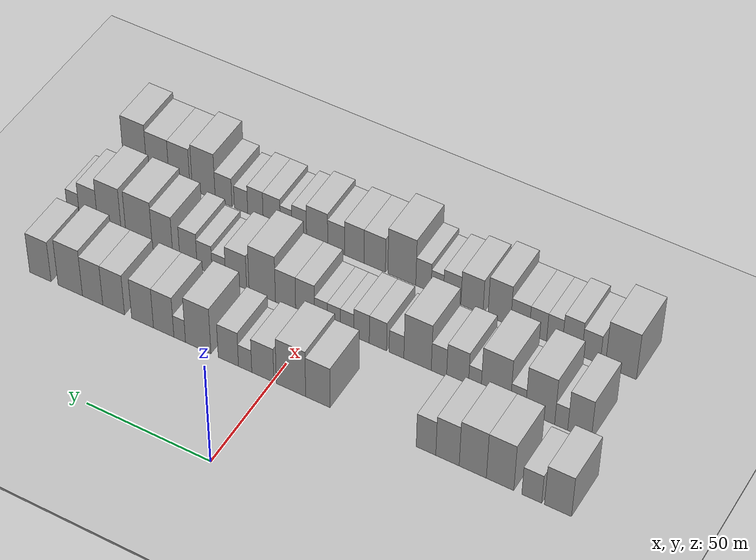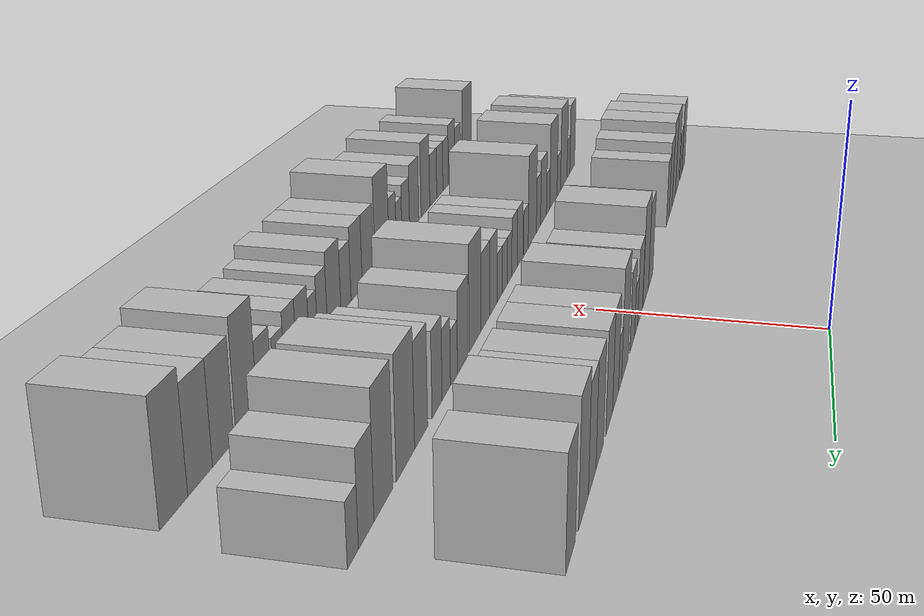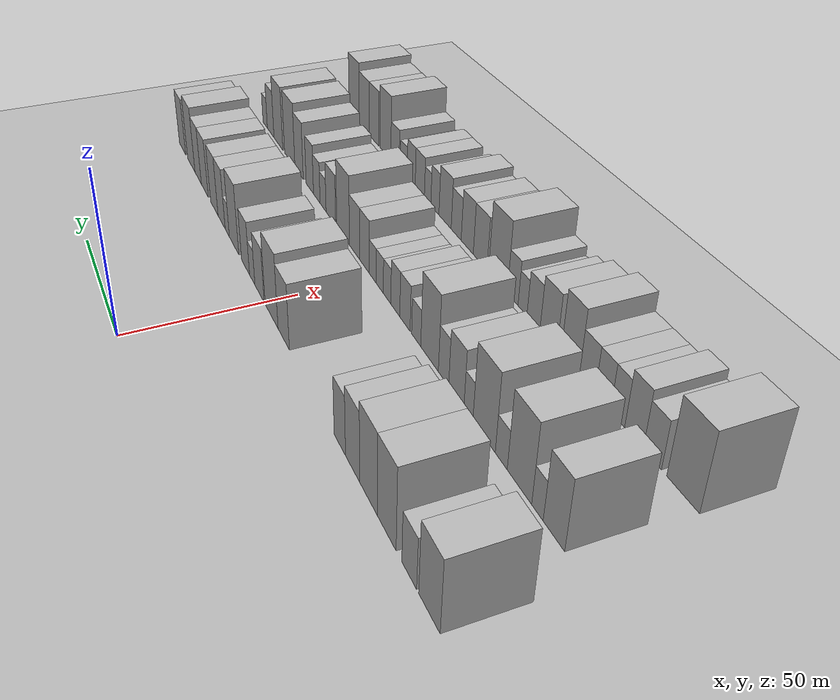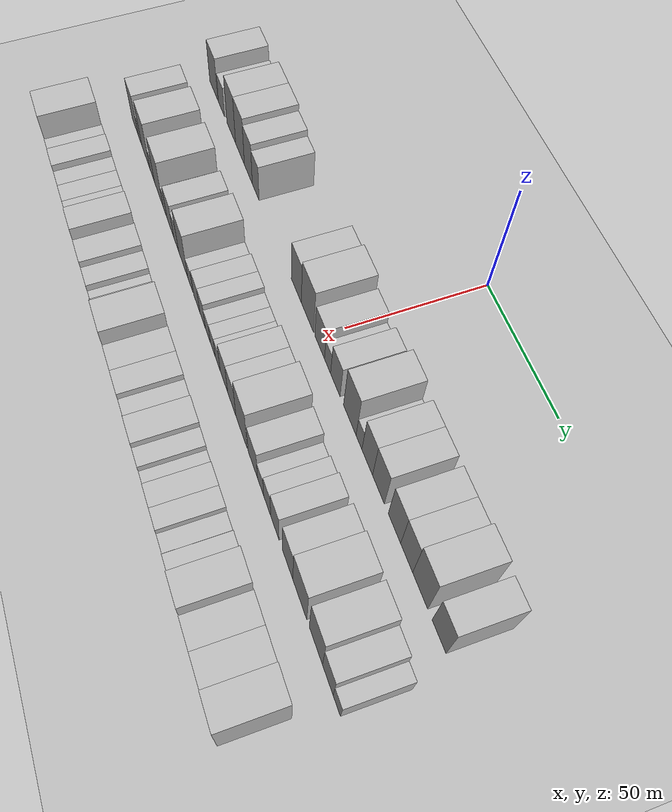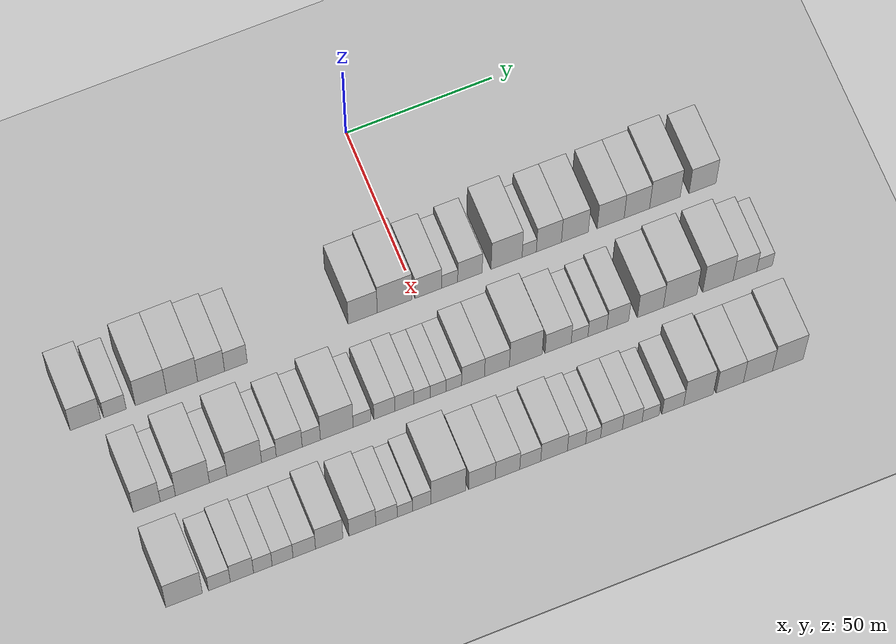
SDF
<sdf version="1.6">
 <world name="default">
  <include><name>ground_plane_1</name><uri>model://HANNAS_ground_plane</uri></include>
  <include>
   <name>ground_plane_2</name>
   <uri>model://HANNAS_ground_plane</uri>
   <pose>100 0 0  0 0 0</pose>
  </include>
  <model name="building_23">
   <static>1</static>
   <pose>50.0000 -110.7468 0 0.000000 0.000000 0.000000</pose>
   <link name="link">
    <pose>0 0 10.50 0 0 0</pose>
    <collision name="collision"><geometry><box><size>20.0000 10.0822 21.0000</size></box></geometry></collision>
    <visual name="visual">
     <cast_shadows>0</cast_shadows>
     <geometry><box><size>20.0000 10.0822 21.0000</size></box></geometry>
     <material>
      <script>
       <uri>model://HANNAS_wall/materials/scripts</uri>
       <uri>model://HANNAS_wall/materials/textures</uri>
       <name>vrc/HANNAS_wall</name>
      </script>
     </material>
    </visual>
   </link>
  </model>
  <model name="building_24">
   <static>1</static>
   <pose>50.0000 -100.9784 0 0.000000 0.000000 0.000000</pose>
   <link name="link">
    <pose>0 0 7.50 0 0 0</pose>
    <collision name="collision"><geometry><box><size>20.0000 7.4545 15.0000</size></box></geometry></collision>
    <visual name="visual">
     <cast_shadows>0</cast_shadows>
     <geometry><box><size>20.0000 7.4545 15.0000</size></box></geometry>
     <material>
      <script>
       <uri>model://HANNAS_wall/materials/scripts</uri>
       <uri>model://HANNAS_wall/materials/textures</uri>
       <name>vrc/HANNAS_wall</name>
      </script>
     </material>
    </visual>
   </link>
  </model>
  <model name="building_25">
   <static>1</static>
   <pose>50.0000 -89.0667 0 0.000000 0.000000 0.000000</pose>
   <link name="link">
    <pose>0 0 12.00 0 0 0</pose>
    <collision name="collision"><geometry><box><size>20.0000 10.3689 24.0000</size></box></geometry></collision>
    <visual name="visual">
     <cast_shadows>0</cast_shadows>
     <geometry><box><size>20.0000 10.3689 24.0000</size></box></geometry>
     <material>
      <script>
       <uri>model://HANNAS_wall/materials/scripts</uri>
       <uri>model://HANNAS_wall/materials/textures</uri>
       <name>vrc/HANNAS_wall</name>
      </script>
     </material>
    </visual>
   </link>
  </model>
  <model name="building_26">
   <static>1</static>
   <pose>50.0000 -78.7069 0 0.000000 0.000000 0.000000</pose>
   <link name="link">
    <pose>0 0 12.00 0 0 0</pose>
    <collision name="collision"><geometry><box><size>20.0000 10.3507 24.0000</size></box></geometry></collision>
    <visual name="visual">
     <cast_shadows>0</cast_shadows>
     <geometry><box><size>20.0000 10.3507 24.0000</size></box></geometry>
     <material>
      <script>
       <uri>model://HANNAS_wall/materials/scripts</uri>
       <uri>model://HANNAS_wall/materials/textures</uri>
       <name>vrc/HANNAS_wall</name>
      </script>
     </material>
    </visual>
   </link>
  </model>
  <model name="building_27">
   <static>1</static>
   <pose>50.0000 -69.0423 0 0.000000 0.000000 0.000000</pose>
   <link name="link">
    <pose>0 0 10.50 0 0 0</pose>
    <collision name="collision"><geometry><box><size>20.0000 8.9786 21.0000</size></box></geometry></collision>
    <visual name="visual">
     <cast_shadows>0</cast_shadows>
     <geometry><box><size>20.0000 8.9786 21.0000</size></box></geometry>
     <material>
      <script>
       <uri>model://HANNAS_wall/materials/scripts</uri>
       <uri>model://HANNAS_wall/materials/textures</uri>
       <name>vrc/HANNAS_wall</name>
      </script>
     </material>
    </visual>
   </link>
  </model>
  <model name="building_28">
   <static>1</static>
   <pose>50.0000 -60.7804 0 0.000000 0.000000 0.000000</pose>
   <link name="link">
    <pose>0 0 9.00 0 0 0</pose>
    <collision name="collision"><geometry><box><size>20.0000 7.5452 18.0000</size></box></geometry></collision>
    <visual name="visual">
     <cast_shadows>0</cast_shadows>
     <geometry><box><size>20.0000 7.5452 18.0000</size></box></geometry>
     <material>
      <script>
       <uri>model://HANNAS_wall/materials/scripts</uri>
       <uri>model://HANNAS_wall/materials/textures</uri>
       <name>vrc/HANNAS_wall</name>
      </script>
     </material>
    </visual>
   </link>
  </model>
  <model name="building_29">
   <static>1</static>
   <pose>50.0000 -18.3512 0 0.000000 0.000000 0.000000</pose>
   <link name="link">
    <pose>0 0 10.50 0 0 0</pose>
    <collision name="collision"><geometry><box><size>20.0000 9.7710 21.0000</size></box></geometry></collision>
    <visual name="visual">
     <cast_shadows>0</cast_shadows>
     <geometry><box><size>20.0000 9.7710 21.0000</size></box></geometry>
     <material>
      <script>
       <uri>model://HANNAS_wall/materials/scripts</uri>
       <uri>model://HANNAS_wall/materials/textures</uri>
       <name>vrc/HANNAS_wall</name>
      </script>
     </material>
    </visual>
   </link>
  </model>
  <model name="building_30">
   <static>1</static>
   <pose>50.0000 -7.5847 0 0.000000 0.000000 0.000000</pose>
   <link name="link">
    <pose>0 0 12.00 0 0 0</pose>
    <collision name="collision"><geometry><box><size>20.0000 11.7621 24.0000</size></box></geometry></collision>
    <visual name="visual">
     <cast_shadows>0</cast_shadows>
     <geometry><box><size>20.0000 11.7621 24.0000</size></box></geometry>
     <material>
      <script>
       <uri>model://HANNAS_wall/materials/scripts</uri>
       <uri>model://HANNAS_wall/materials/textures</uri>
       <name>vrc/HANNAS_wall</name>
      </script>
     </material>
    </visual>
   </link>
  </model>
  <model name="building_31">
   <static>1</static>
   <pose>50.0000 3.7757 0 0.000000 0.000000 0.000000</pose>
   <link name="link">
    <pose>0 0 9.00 0 0 0</pose>
    <collision name="collision"><geometry><box><size>20.0000 8.9586 18.0000</size></box></geometry></collision>
    <visual name="visual">
     <cast_shadows>0</cast_shadows>
     <geometry><box><size>20.0000 8.9586 18.0000</size></box></geometry>
     <material>
      <script>
       <uri>model://HANNAS_wall/materials/scripts</uri>
       <uri>model://HANNAS_wall/materials/textures</uri>
       <name>vrc/HANNAS_wall</name>
      </script>
     </material>
    </visual>
   </link>
  </model>
  <model name="building_32">
   <static>1</static>
   <pose>50.0000 10.9654 0 0.000000 0.000000 0.000000</pose>
   <link name="link">
    <pose>0 0 6.00 0 0 0</pose>
    <collision name="collision"><geometry><box><size>20.0000 5.4208 12.0000</size></box></geometry></collision>
    <visual name="visual">
     <cast_shadows>0</cast_shadows>
     <geometry><box><size>20.0000 5.4208 12.0000</size></box></geometry>
     <material>
      <script>
       <uri>model://HANNAS_wall/materials/scripts</uri>
       <uri>model://HANNAS_wall/materials/textures</uri>
       <name>vrc/HANNAS_wall</name>
      </script>
     </material>
    </visual>
   </link>
  </model>
  <model name="building_33">
   <static>1</static>
   <pose>50.0000 17.8217 0 0.000000 0.000000 0.000000</pose>
   <link name="link">
    <pose>0 0 9.00 0 0 0</pose>
    <collision name="collision"><geometry><box><size>20.0000 8.2917 18.0000</size></box></geometry></collision>
    <visual name="visual">
     <cast_shadows>0</cast_shadows>
     <geometry><box><size>20.0000 8.2917 18.0000</size></box></geometry>
     <material>
      <script>
       <uri>model://HANNAS_wall/materials/scripts</uri>
       <uri>model://HANNAS_wall/materials/textures</uri>
       <name>vrc/HANNAS_wall</name>
      </script>
     </material>
    </visual>
   </link>
  </model>
  <model name="building_34">
   <static>1</static>
   <pose>50.0000 30.2291 0 0.000000 0.000000 0.000000</pose>
   <link name="link">
    <pose>0 0 12.00 0 0 0</pose>
    <collision name="collision"><geometry><box><size>20.0000 10.5231 24.0000</size></box></geometry></collision>
    <visual name="visual">
     <cast_shadows>0</cast_shadows>
     <geometry><box><size>20.0000 10.5231 24.0000</size></box></geometry>
     <material>
      <script>
       <uri>model://HANNAS_wall/materials/scripts</uri>
       <uri>model://HANNAS_wall/materials/textures</uri>
       <name>vrc/HANNAS_wall</name>
      </script>
     </material>
    </visual>
   </link>
  </model>
  <model name="building_35">
   <static>1</static>
   <pose>50.0000 37.9034 0 0.000000 0.000000 0.000000</pose>
   <link name="link">
    <pose>0 0 6.00 0 0 0</pose>
    <collision name="collision"><geometry><box><size>20.0000 4.8255 12.0000</size></box></geometry></collision>
    <visual name="visual">
     <cast_shadows>0</cast_shadows>
     <geometry><box><size>20.0000 4.8255 12.0000</size></box></geometry>
     <material>
      <script>
       <uri>model://HANNAS_wall/materials/scripts</uri>
       <uri>model://HANNAS_wall/materials/textures</uri>
       <name>vrc/HANNAS_wall</name>
      </script>
     </material>
    </visual>
   </link>
  </model>
  <model name="building_36">
   <static>1</static>
   <pose>50.0000 44.5834 0 0.000000 0.000000 0.000000</pose>
   <link name="link">
    <pose>0 0 10.50 0 0 0</pose>
    <collision name="collision"><geometry><box><size>20.0000 8.5345 21.0000</size></box></geometry></collision>
    <visual name="visual">
     <cast_shadows>0</cast_shadows>
     <geometry><box><size>20.0000 8.5345 21.0000</size></box></geometry>
     <material>
      <script>
       <uri>model://HANNAS_wall/materials/scripts</uri>
       <uri>model://HANNAS_wall/materials/textures</uri>
       <name>vrc/HANNAS_wall</name>
      </script>
     </material>
    </visual>
   </link>
  </model>
  <model name="building_37">
   <static>1</static>
   <pose>50.0000 53.4414 0 0.000000 0.000000 0.000000</pose>
   <link name="link">
    <pose>0 0 10.50 0 0 0</pose>
    <collision name="collision"><geometry><box><size>20.0000 9.1814 21.0000</size></box></geometry></collision>
    <visual name="visual">
     <cast_shadows>0</cast_shadows>
     <geometry><box><size>20.0000 9.1814 21.0000</size></box></geometry>
     <material>
      <script>
       <uri>model://HANNAS_wall/materials/scripts</uri>
       <uri>model://HANNAS_wall/materials/textures</uri>
       <name>vrc/HANNAS_wall</name>
      </script>
     </material>
    </visual>
   </link>
  </model>
  <model name="building_38">
   <static>1</static>
   <pose>50.0000 65.6423 0 0.000000 0.000000 0.000000</pose>
   <link name="link">
    <pose>0 0 10.50 0 0 0</pose>
    <collision name="collision"><geometry><box><size>20.0000 9.2204 21.0000</size></box></geometry></collision>
    <visual name="visual">
     <cast_shadows>0</cast_shadows>
     <geometry><box><size>20.0000 9.2204 21.0000</size></box></geometry>
     <material>
      <script>
       <uri>model://HANNAS_wall/materials/scripts</uri>
       <uri>model://HANNAS_wall/materials/textures</uri>
       <name>vrc/HANNAS_wall</name>
      </script>
     </material>
    </visual>
   </link>
  </model>
  <model name="building_39">
   <static>1</static>
   <pose>50.0000 74.6010 0 0.000000 0.000000 0.000000</pose>
   <link name="link">
    <pose>0 0 10.50 0 0 0</pose>
    <collision name="collision"><geometry><box><size>20.0000 8.6968 21.0000</size></box></geometry></collision>
    <visual name="visual">
     <cast_shadows>0</cast_shadows>
     <geometry><box><size>20.0000 8.6968 21.0000</size></box></geometry>
     <material>
      <script>
       <uri>model://HANNAS_wall/materials/scripts</uri>
       <uri>model://HANNAS_wall/materials/textures</uri>
       <name>vrc/HANNAS_wall</name>
      </script>
     </material>
    </visual>
   </link>
  </model>
  <model name="building_40">
   <static>1</static>
   <pose>50.0000 84.2003 0 0.000000 0.000000 0.000000</pose>
   <link name="link">
    <pose>0 0 12.00 0 0 0</pose>
    <collision name="collision"><geometry><box><size>20.0000 10.5019 24.0000</size></box></geometry></collision>
    <visual name="visual">
     <cast_shadows>0</cast_shadows>
     <geometry><box><size>20.0000 10.5019 24.0000</size></box></geometry>
     <material>
      <script>
       <uri>model://HANNAS_wall/materials/scripts</uri>
       <uri>model://HANNAS_wall/materials/textures</uri>
       <name>vrc/HANNAS_wall</name>
      </script>
     </material>
    </visual>
   </link>
  </model>
  <model name="building_41">
   <static>1</static>
   <pose>50.0000 97.0796 0 0.000000 0.000000 0.000000</pose>
   <link name="link">
    <pose>0 0 10.50 0 0 0</pose>
    <collision name="collision"><geometry><box><size>20.0000 9.2566 21.0000</size></box></geometry></collision>
    <visual name="visual">
     <cast_shadows>0</cast_shadows>
     <geometry><box><size>20.0000 9.2566 21.0000</size></box></geometry>
     <material>
      <script>
       <uri>model://HANNAS_wall/materials/scripts</uri>
       <uri>model://HANNAS_wall/materials/textures</uri>
       <name>vrc/HANNAS_wall</name>
      </script>
     </material>
    </visual>
   </link>
  </model>
  <model name="building_91">
   <static>1</static>
   <pose>82.0000 -102.6688 0 0.000000 0.000000 0.000000</pose>
   <link name="link">
    <pose>0 0 10.50 0 0 0</pose>
    <collision name="collision"><geometry><box><size>20.0000 8.9165 21.0000</size></box></geometry></collision>
    <visual name="visual">
     <cast_shadows>0</cast_shadows>
     <geometry><box><size>20.0000 8.9165 21.0000</size></box></geometry>
     <material>
      <script>
       <uri>model://HANNAS_wall/materials/scripts</uri>
       <uri>model://HANNAS_wall/materials/textures</uri>
       <name>vrc/HANNAS_wall</name>
      </script>
     </material>
    </visual>
   </link>
  </model>
  <model name="building_92">
   <static>1</static>
   <pose>82.0000 -95.7195 0 0.000000 0.000000 0.000000</pose>
   <link name="link">
    <pose>0 0 6.00 0 0 0</pose>
    <collision name="collision"><geometry><box><size>20.0000 4.9822 12.0000</size></box></geometry></collision>
    <visual name="visual">
     <cast_shadows>0</cast_shadows>
     <geometry><box><size>20.0000 4.9822 12.0000</size></box></geometry>
     <material>
      <script>
       <uri>model://HANNAS_wall/materials/scripts</uri>
       <uri>model://HANNAS_wall/materials/textures</uri>
       <name>vrc/HANNAS_wall</name>
      </script>
     </material>
    </visual>
   </link>
  </model>
  <model name="building_93">
   <static>1</static>
   <pose>82.0000 -87.6260 0 0.000000 0.000000 0.000000</pose>
   <link name="link">
    <pose>0 0 12.00 0 0 0</pose>
    <collision name="collision"><geometry><box><size>20.0000 11.2050 24.0000</size></box></geometry></collision>
    <visual name="visual">
     <cast_shadows>0</cast_shadows>
     <geometry><box><size>20.0000 11.2050 24.0000</size></box></geometry>
     <material>
      <script>
       <uri>model://HANNAS_wall/materials/scripts</uri>
       <uri>model://HANNAS_wall/materials/textures</uri>
       <name>vrc/HANNAS_wall</name>
      </script>
     </material>
    </visual>
   </link>
  </model>
  <model name="building_94">
   <static>1</static>
   <pose>82.0000 -79.1246 0 0.000000 0.000000 0.000000</pose>
   <link name="link">
    <pose>0 0 6.00 0 0 0</pose>
    <collision name="collision"><geometry><box><size>20.0000 5.7979 12.0000</size></box></geometry></collision>
    <visual name="visual">
     <cast_shadows>0</cast_shadows>
     <geometry><box><size>20.0000 5.7979 12.0000</size></box></geometry>
     <material>
      <script>
       <uri>model://HANNAS_wall/materials/scripts</uri>
       <uri>model://HANNAS_wall/materials/textures</uri>
       <name>vrc/HANNAS_wall</name>
      </script>
     </material>
    </visual>
   </link>
  </model>
  <model name="building_95">
   <static>1</static>
   <pose>82.0000 -70.4843 0 0.000000 0.000000 0.000000</pose>
   <link name="link">
    <pose>0 0 12.00 0 0 0</pose>
    <collision name="collision"><geometry><box><size>20.0000 11.4827 24.0000</size></box></geometry></collision>
    <visual name="visual">
     <cast_shadows>0</cast_shadows>
     <geometry><box><size>20.0000 11.4827 24.0000</size></box></geometry>
     <material>
      <script>
       <uri>model://HANNAS_wall/materials/scripts</uri>
       <uri>model://HANNAS_wall/materials/textures</uri>
       <name>vrc/HANNAS_wall</name>
      </script>
     </material>
    </visual>
   </link>
  </model>
  <model name="building_96">
   <static>1</static>
   <pose>82.0000 -62.3069 0 0.000000 0.000000 0.000000</pose>
   <link name="link">
    <pose>0 0 6.00 0 0 0</pose>
    <collision name="collision"><geometry><box><size>20.0000 4.8720 12.0000</size></box></geometry></collision>
    <visual name="visual">
     <cast_shadows>0</cast_shadows>
     <geometry><box><size>20.0000 4.8720 12.0000</size></box></geometry>
     <material>
      <script>
       <uri>model://HANNAS_wall/materials/scripts</uri>
       <uri>model://HANNAS_wall/materials/textures</uri>
       <name>vrc/HANNAS_wall</name>
      </script>
     </material>
    </visual>
   </link>
  </model>
  <model name="building_97">
   <static>1</static>
   <pose>82.0000 -55.5738 0 0.000000 0.000000 0.000000</pose>
   <link name="link">
    <pose>0 0 9.00 0 0 0</pose>
    <collision name="collision"><geometry><box><size>20.0000 8.5943 18.0000</size></box></geometry></collision>
    <visual name="visual">
     <cast_shadows>0</cast_shadows>
     <geometry><box><size>20.0000 8.5943 18.0000</size></box></geometry>
     <material>
      <script>
       <uri>model://HANNAS_wall/materials/scripts</uri>
       <uri>model://HANNAS_wall/materials/textures</uri>
       <name>vrc/HANNAS_wall</name>
      </script>
     </material>
    </visual>
   </link>
  </model>
  <model name="building_98">
   <static>1</static>
   <pose>82.0000 -48.2503 0 0.000000 0.000000 0.000000</pose>
   <link name="link">
    <pose>0 0 7.50 0 0 0</pose>
    <collision name="collision"><geometry><box><size>20.0000 6.0528 15.0000</size></box></geometry></collision>
    <visual name="visual">
     <cast_shadows>0</cast_shadows>
     <geometry><box><size>20.0000 6.0528 15.0000</size></box></geometry>
     <material>
      <script>
       <uri>model://HANNAS_wall/materials/scripts</uri>
       <uri>model://HANNAS_wall/materials/textures</uri>
       <name>vrc/HANNAS_wall</name>
      </script>
     </material>
    </visual>
   </link>
  </model>
  <model name="building_99">
   <static>1</static>
   <pose>82.0000 -39.7735 0 0.000000 0.000000 0.000000</pose>
   <link name="link">
    <pose>0 0 12.00 0 0 0</pose>
    <collision name="collision"><geometry><box><size>20.0000 10.9008 24.0000</size></box></geometry></collision>
    <visual name="visual">
     <cast_shadows>0</cast_shadows>
     <geometry><box><size>20.0000 10.9008 24.0000</size></box></geometry>
     <material>
      <script>
       <uri>model://HANNAS_wall/materials/scripts</uri>
       <uri>model://HANNAS_wall/materials/textures</uri>
       <name>vrc/HANNAS_wall</name>
      </script>
     </material>
    </visual>
   </link>
  </model>
  <model name="building_100">
   <static>1</static>
   <pose>82.0000 -31.3671 0 0.000000 0.000000 0.000000</pose>
   <link name="link">
    <pose>0 0 6.00 0 0 0</pose>
    <collision name="collision"><geometry><box><size>20.0000 5.9120 12.0000</size></box></geometry></collision>
    <visual name="visual">
     <cast_shadows>0</cast_shadows>
     <geometry><box><size>20.0000 5.9120 12.0000</size></box></geometry>
     <material>
      <script>
       <uri>model://HANNAS_wall/materials/scripts</uri>
       <uri>model://HANNAS_wall/materials/textures</uri>
       <name>vrc/HANNAS_wall</name>
      </script>
     </material>
    </visual>
   </link>
  </model>
  <model name="building_101">
   <static>1</static>
   <pose>82.0000 -23.9196 0 0.000000 0.000000 0.000000</pose>
   <link name="link">
    <pose>0 0 7.50 0 0 0</pose>
    <collision name="collision"><geometry><box><size>20.0000 6.9832 15.0000</size></box></geometry></collision>
    <visual name="visual">
     <cast_shadows>0</cast_shadows>
     <geometry><box><size>20.0000 6.9832 15.0000</size></box></geometry>
     <material>
      <script>
       <uri>model://HANNAS_wall/materials/scripts</uri>
       <uri>model://HANNAS_wall/materials/textures</uri>
       <name>vrc/HANNAS_wall</name>
      </script>
     </material>
    </visual>
   </link>
  </model>
  <model name="building_102">
   <static>1</static>
   <pose>82.0000 -17.2899 0 0.000000 0.000000 0.000000</pose>
   <link name="link">
    <pose>0 0 7.50 0 0 0</pose>
    <collision name="collision"><geometry><box><size>20.0000 6.2761 15.0000</size></box></geometry></collision>
    <visual name="visual">
     <cast_shadows>0</cast_shadows>
     <geometry><box><size>20.0000 6.2761 15.0000</size></box></geometry>
     <material>
      <script>
       <uri>model://HANNAS_wall/materials/scripts</uri>
       <uri>model://HANNAS_wall/materials/textures</uri>
       <name>vrc/HANNAS_wall</name>
      </script>
     </material>
    </visual>
   </link>
  </model>
  <model name="building_103">
   <static>1</static>
   <pose>82.0000 -11.4267 0 0.000000 0.000000 0.000000</pose>
   <link name="link">
    <pose>0 0 6.00 0 0 0</pose>
    <collision name="collision"><geometry><box><size>20.0000 5.4503 12.0000</size></box></geometry></collision>
    <visual name="visual">
     <cast_shadows>0</cast_shadows>
     <geometry><box><size>20.0000 5.4503 12.0000</size></box></geometry>
     <material>
      <script>
       <uri>model://HANNAS_wall/materials/scripts</uri>
       <uri>model://HANNAS_wall/materials/textures</uri>
       <name>vrc/HANNAS_wall</name>
      </script>
     </material>
    </visual>
   </link>
  </model>
  <model name="building_104">
   <static>1</static>
   <pose>82.0000 -6.0290 0 0.000000 0.000000 0.000000</pose>
   <link name="link">
    <pose>0 0 6.00 0 0 0</pose>
    <collision name="collision"><geometry><box><size>20.0000 5.3451 12.0000</size></box></geometry></collision>
    <visual name="visual">
     <cast_shadows>0</cast_shadows>
     <geometry><box><size>20.0000 5.3451 12.0000</size></box></geometry>
     <material>
      <script>
       <uri>model://HANNAS_wall/materials/scripts</uri>
       <uri>model://HANNAS_wall/materials/textures</uri>
       <name>vrc/HANNAS_wall</name>
      </script>
     </material>
    </visual>
   </link>
  </model>
  <model name="building_105">
   <static>1</static>
   <pose>82.0000 -0.7383 0 0.000000 0.000000 0.000000</pose>
   <link name="link">
    <pose>0 0 6.00 0 0 0</pose>
    <collision name="collision"><geometry><box><size>20.0000 5.2363 12.0000</size></box></geometry></collision>
    <visual name="visual">
     <cast_shadows>0</cast_shadows>
     <geometry><box><size>20.0000 5.2363 12.0000</size></box></geometry>
     <material>
      <script>
       <uri>model://HANNAS_wall/materials/scripts</uri>
       <uri>model://HANNAS_wall/materials/textures</uri>
       <name>vrc/HANNAS_wall</name>
      </script>
     </material>
    </visual>
   </link>
  </model>
  <model name="building_106">
   <static>1</static>
   <pose>82.0000 5.7378 0 0.000000 0.000000 0.000000</pose>
   <link name="link">
    <pose>0 0 9.00 0 0 0</pose>
    <collision name="collision"><geometry><box><size>20.0000 7.7158 18.0000</size></box></geometry></collision>
    <visual name="visual">
     <cast_shadows>0</cast_shadows>
     <geometry><box><size>20.0000 7.7158 18.0000</size></box></geometry>
     <material>
      <script>
       <uri>model://HANNAS_wall/materials/scripts</uri>
       <uri>model://HANNAS_wall/materials/textures</uri>
       <name>vrc/HANNAS_wall</name>
      </script>
     </material>
    </visual>
   </link>
  </model>
  <model name="building_107">
   <static>1</static>
   <pose>82.0000 13.7709 0 0.000000 0.000000 0.000000</pose>
   <link name="link">
    <pose>0 0 9.00 0 0 0</pose>
    <collision name="collision"><geometry><box><size>20.0000 8.3504 18.0000</size></box></geometry></collision>
    <visual name="visual">
     <cast_shadows>0</cast_shadows>
     <geometry><box><size>20.0000 8.3504 18.0000</size></box></geometry>
     <material>
      <script>
       <uri>model://HANNAS_wall/materials/scripts</uri>
       <uri>model://HANNAS_wall/materials/textures</uri>
       <name>vrc/HANNAS_wall</name>
      </script>
     </material>
    </visual>
   </link>
  </model>
  <model name="building_108">
   <static>1</static>
   <pose>82.0000 23.4504 0 0.000000 0.000000 0.000000</pose>
   <link name="link">
    <pose>0 0 12.00 0 0 0</pose>
    <collision name="collision"><geometry><box><size>20.0000 11.0087 24.0000</size></box></geometry></collision>
    <visual name="visual">
     <cast_shadows>0</cast_shadows>
     <geometry><box><size>20.0000 11.0087 24.0000</size></box></geometry>
     <material>
      <script>
       <uri>model://HANNAS_wall/materials/scripts</uri>
       <uri>model://HANNAS_wall/materials/textures</uri>
       <name>vrc/HANNAS_wall</name>
      </script>
     </material>
    </visual>
   </link>
  </model>
  <model name="building_109">
   <static>1</static>
   <pose>82.0000 34.3567 0 0.000000 0.000000 0.000000</pose>
   <link name="link">
    <pose>0 0 9.00 0 0 0</pose>
    <collision name="collision"><geometry><box><size>20.0000 8.8040 18.0000</size></box></geometry></collision>
    <visual name="visual">
     <cast_shadows>0</cast_shadows>
     <geometry><box><size>20.0000 8.8040 18.0000</size></box></geometry>
     <material>
      <script>
       <uri>model://HANNAS_wall/materials/scripts</uri>
       <uri>model://HANNAS_wall/materials/textures</uri>
       <name>vrc/HANNAS_wall</name>
      </script>
     </material>
    </visual>
   </link>
  </model>
  <model name="building_110">
   <static>1</static>
   <pose>82.0000 41.5994 0 0.000000 0.000000 0.000000</pose>
   <link name="link">
    <pose>0 0 6.00 0 0 0</pose>
    <collision name="collision"><geometry><box><size>20.0000 5.6814 12.0000</size></box></geometry></collision>
    <visual name="visual">
     <cast_shadows>0</cast_shadows>
     <geometry><box><size>20.0000 5.6814 12.0000</size></box></geometry>
     <material>
      <script>
       <uri>model://HANNAS_wall/materials/scripts</uri>
       <uri>model://HANNAS_wall/materials/textures</uri>
       <name>vrc/HANNAS_wall</name>
      </script>
     </material>
    </visual>
   </link>
  </model>
  <model name="building_111">
   <static>1</static>
   <pose>82.0000 47.6321 0 0.000000 0.000000 0.000000</pose>
   <link name="link">
    <pose>0 0 7.50 0 0 0</pose>
    <collision name="collision"><geometry><box><size>20.0000 6.3839 15.0000</size></box></geometry></collision>
    <visual name="visual">
     <cast_shadows>0</cast_shadows>
     <geometry><box><size>20.0000 6.3839 15.0000</size></box></geometry>
     <material>
      <script>
       <uri>model://HANNAS_wall/materials/scripts</uri>
       <uri>model://HANNAS_wall/materials/textures</uri>
       <name>vrc/HANNAS_wall</name>
      </script>
     </material>
    </visual>
   </link>
  </model>
  <model name="building_112">
   <static>1</static>
   <pose>82.0000 54.5135 0 0.000000 0.000000 0.000000</pose>
   <link name="link">
    <pose>0 0 9.00 0 0 0</pose>
    <collision name="collision"><geometry><box><size>20.0000 7.3790 18.0000</size></box></geometry></collision>
    <visual name="visual">
     <cast_shadows>0</cast_shadows>
     <geometry><box><size>20.0000 7.3790 18.0000</size></box></geometry>
     <material>
      <script>
       <uri>model://HANNAS_wall/materials/scripts</uri>
       <uri>model://HANNAS_wall/materials/textures</uri>
       <name>vrc/HANNAS_wall</name>
      </script>
     </material>
    </visual>
   </link>
  </model>
  <model name="building_113">
   <static>1</static>
   <pose>82.0000 65.5983 0 0.000000 0.000000 0.000000</pose>
   <link name="link">
    <pose>0 0 10.50 0 0 0</pose>
    <collision name="collision"><geometry><box><size>20.0000 8.7905 21.0000</size></box></geometry></collision>
    <visual name="visual">
     <cast_shadows>0</cast_shadows>
     <geometry><box><size>20.0000 8.7905 21.0000</size></box></geometry>
     <material>
      <script>
       <uri>model://HANNAS_wall/materials/scripts</uri>
       <uri>model://HANNAS_wall/materials/textures</uri>
       <name>vrc/HANNAS_wall</name>
      </script>
     </material>
    </visual>
   </link>
  </model>
  <model name="building_114">
   <static>1</static>
   <pose>82.0000 75.6892 0 0.000000 0.000000 0.000000</pose>
   <link name="link">
    <pose>0 0 12.00 0 0 0</pose>
    <collision name="collision"><geometry><box><size>20.0000 11.3912 24.0000</size></box></geometry></collision>
    <visual name="visual">
     <cast_shadows>0</cast_shadows>
     <geometry><box><size>20.0000 11.3912 24.0000</size></box></geometry>
     <material>
      <script>
       <uri>model://HANNAS_wall/materials/scripts</uri>
       <uri>model://HANNAS_wall/materials/textures</uri>
       <name>vrc/HANNAS_wall</name>
      </script>
     </material>
    </visual>
   </link>
  </model>
  <model name="building_115">
   <static>1</static>
   <pose>82.0000 88.5624 0 0.000000 0.000000 0.000000</pose>
   <link name="link">
    <pose>0 0 12.00 0 0 0</pose>
    <collision name="collision"><geometry><box><size>20.0000 10.3553 24.0000</size></box></geometry></collision>
    <visual name="visual">
     <cast_shadows>0</cast_shadows>
     <geometry><box><size>20.0000 10.3553 24.0000</size></box></geometry>
     <material>
      <script>
       <uri>model://HANNAS_wall/materials/scripts</uri>
       <uri>model://HANNAS_wall/materials/textures</uri>
       <name>vrc/HANNAS_wall</name>
      </script>
     </material>
    </visual>
   </link>
  </model>
  <model name="building_116">
   <static>1</static>
   <pose>82.0000 97.7600 0 0.000000 0.000000 0.000000</pose>
   <link name="link">
    <pose>0 0 9.00 0 0 0</pose>
    <collision name="collision"><geometry><box><size>20.0000 8.0398 18.0000</size></box></geometry></collision>
    <visual name="visual">
     <cast_shadows>0</cast_shadows>
     <geometry><box><size>20.0000 8.0398 18.0000</size></box></geometry>
     <material>
      <script>
       <uri>model://HANNAS_wall/materials/scripts</uri>
       <uri>model://HANNAS_wall/materials/textures</uri>
       <name>vrc/HANNAS_wall</name>
      </script>
     </material>
    </visual>
   </link>
  </model>
  <model name="building_117">
   <static>1</static>
   <pose>82.0000 104.4605 0 0.000000 0.000000 0.000000</pose>
   <link name="link">
    <pose>0 0 6.00 0 0 0</pose>
    <collision name="collision"><geometry><box><size>20.0000 5.3612 12.0000</size></box></geometry></collision>
    <visual name="visual">
     <cast_shadows>0</cast_shadows>
     <geometry><box><size>20.0000 5.3612 12.0000</size></box></geometry>
     <material>
      <script>
       <uri>model://HANNAS_wall/materials/scripts</uri>
       <uri>model://HANNAS_wall/materials/textures</uri>
       <name>vrc/HANNAS_wall</name>
      </script>
     </material>
    </visual>
   </link>
  </model>
  <model name="building_163">
   <static>1</static>
   <pose>114.0000 -102.6891 0 0.000000 0.000000 0.000000</pose>
   <link name="link">
    <pose>0 0 12.00 0 0 0</pose>
    <collision name="collision"><geometry><box><size>20.0000 11.9738 24.0000</size></box></geometry></collision>
    <visual name="visual">
     <cast_shadows>0</cast_shadows>
     <geometry><box><size>20.0000 11.9738 24.0000</size></box></geometry>
     <material>
      <script>
       <uri>model://HANNAS_wall/materials/scripts</uri>
       <uri>model://HANNAS_wall/materials/textures</uri>
       <name>vrc/HANNAS_wall</name>
      </script>
     </material>
    </visual>
   </link>
  </model>
  <model name="building_164">
   <static>1</static>
   <pose>114.0000 -91.1321 0 0.000000 0.000000 0.000000</pose>
   <link name="link">
    <pose>0 0 7.50 0 0 0</pose>
    <collision name="collision"><geometry><box><size>20.0000 7.1402 15.0000</size></box></geometry></collision>
    <visual name="visual">
     <cast_shadows>0</cast_shadows>
     <geometry><box><size>20.0000 7.1402 15.0000</size></box></geometry>
     <material>
      <script>
       <uri>model://HANNAS_wall/materials/scripts</uri>
       <uri>model://HANNAS_wall/materials/textures</uri>
       <name>vrc/HANNAS_wall</name>
      </script>
     </material>
    </visual>
   </link>
  </model>
  <model name="building_165">
   <static>1</static>
   <pose>114.0000 -83.7383 0 0.000000 0.000000 0.000000</pose>
   <link name="link">
    <pose>0 0 9.00 0 0 0</pose>
    <collision name="collision"><geometry><box><size>20.0000 7.6475 18.0000</size></box></geometry></collision>
    <visual name="visual">
     <cast_shadows>0</cast_shadows>
     <geometry><box><size>20.0000 7.6475 18.0000</size></box></geometry>
     <material>
      <script>
       <uri>model://HANNAS_wall/materials/scripts</uri>
       <uri>model://HANNAS_wall/materials/textures</uri>
       <name>vrc/HANNAS_wall</name>
      </script>
     </material>
    </visual>
   </link>
  </model>
  <model name="building_166">
   <static>1</static>
   <pose>114.0000 -76.8567 0 0.000000 0.000000 0.000000</pose>
   <link name="link">
    <pose>0 0 7.50 0 0 0</pose>
    <collision name="collision"><geometry><box><size>20.0000 6.1155 15.0000</size></box></geometry></collision>
    <visual name="visual">
     <cast_shadows>0</cast_shadows>
     <geometry><box><size>20.0000 6.1155 15.0000</size></box></geometry>
     <material>
      <script>
       <uri>model://HANNAS_wall/materials/scripts</uri>
       <uri>model://HANNAS_wall/materials/textures</uri>
       <name>vrc/HANNAS_wall</name>
      </script>
     </material>
    </visual>
   </link>
  </model>
  <model name="building_167">
   <static>1</static>
   <pose>114.0000 -70.3694 0 0.000000 0.000000 0.000000</pose>
   <link name="link">
    <pose>0 0 7.50 0 0 0</pose>
    <collision name="collision"><geometry><box><size>20.0000 6.8592 15.0000</size></box></geometry></collision>
    <visual name="visual">
     <cast_shadows>0</cast_shadows>
     <geometry><box><size>20.0000 6.8592 15.0000</size></box></geometry>
     <material>
      <script>
       <uri>model://HANNAS_wall/materials/scripts</uri>
       <uri>model://HANNAS_wall/materials/textures</uri>
       <name>vrc/HANNAS_wall</name>
      </script>
     </material>
    </visual>
   </link>
  </model>
  <model name="building_168">
   <static>1</static>
   <pose>114.0000 -63.2441 0 0.000000 0.000000 0.000000</pose>
   <link name="link">
    <pose>0 0 7.50 0 0 0</pose>
    <collision name="collision"><geometry><box><size>20.0000 7.3915 15.0000</size></box></geometry></collision>
    <visual name="visual">
     <cast_shadows>0</cast_shadows>
     <geometry><box><size>20.0000 7.3915 15.0000</size></box></geometry>
     <material>
      <script>
       <uri>model://HANNAS_wall/materials/scripts</uri>
       <uri>model://HANNAS_wall/materials/textures</uri>
       <name>vrc/HANNAS_wall</name>
      </script>
     </material>
    </visual>
   </link>
  </model>
  <model name="building_169">
   <static>1</static>
   <pose>114.0000 -55.0309 0 0.000000 0.000000 0.000000</pose>
   <link name="link">
    <pose>0 0 10.50 0 0 0</pose>
    <collision name="collision"><geometry><box><size>20.0000 9.0348 21.0000</size></box></geometry></collision>
    <visual name="visual">
     <cast_shadows>0</cast_shadows>
     <geometry><box><size>20.0000 9.0348 21.0000</size></box></geometry>
     <material>
      <script>
       <uri>model://HANNAS_wall/materials/scripts</uri>
       <uri>model://HANNAS_wall/materials/textures</uri>
       <name>vrc/HANNAS_wall</name>
      </script>
     </material>
    </visual>
   </link>
  </model>
  <model name="building_170">
   <static>1</static>
   <pose>114.0000 -44.0805 0 0.000000 0.000000 0.000000</pose>
   <link name="link">
    <pose>0 0 9.00 0 0 0</pose>
    <collision name="collision"><geometry><box><size>20.0000 8.8661 18.0000</size></box></geometry></collision>
    <visual name="visual">
     <cast_shadows>0</cast_shadows>
     <geometry><box><size>20.0000 8.8661 18.0000</size></box></geometry>
     <material>
      <script>
       <uri>model://HANNAS_wall/materials/scripts</uri>
       <uri>model://HANNAS_wall/materials/textures</uri>
       <name>vrc/HANNAS_wall</name>
      </script>
     </material>
    </visual>
   </link>
  </model>
  <model name="building_171">
   <static>1</static>
   <pose>114.0000 -36.1068 0 0.000000 0.000000 0.000000</pose>
   <link name="link">
    <pose>0 0 7.50 0 0 0</pose>
    <collision name="collision"><geometry><box><size>20.0000 7.0812 15.0000</size></box></geometry></collision>
    <visual name="visual">
     <cast_shadows>0</cast_shadows>
     <geometry><box><size>20.0000 7.0812 15.0000</size></box></geometry>
     <material>
      <script>
       <uri>model://HANNAS_wall/materials/scripts</uri>
       <uri>model://HANNAS_wall/materials/textures</uri>
       <name>vrc/HANNAS_wall</name>
      </script>
     </material>
    </visual>
   </link>
  </model>
  <model name="building_172">
   <static>1</static>
   <pose>114.0000 -30.0555 0 0.000000 0.000000 0.000000</pose>
   <link name="link">
    <pose>0 0 6.00 0 0 0</pose>
    <collision name="collision"><geometry><box><size>20.0000 5.0214 12.0000</size></box></geometry></collision>
    <visual name="visual">
     <cast_shadows>0</cast_shadows>
     <geometry><box><size>20.0000 5.0214 12.0000</size></box></geometry>
     <material>
      <script>
       <uri>model://HANNAS_wall/materials/scripts</uri>
       <uri>model://HANNAS_wall/materials/textures</uri>
       <name>vrc/HANNAS_wall</name>
      </script>
     </material>
    </visual>
   </link>
  </model>
  <model name="building_173">
   <static>1</static>
   <pose>114.0000 -24.4398 0 0.000000 0.000000 0.000000</pose>
   <link name="link">
    <pose>0 0 7.50 0 0 0</pose>
    <collision name="collision"><geometry><box><size>20.0000 6.2100 15.0000</size></box></geometry></collision>
    <visual name="visual">
     <cast_shadows>0</cast_shadows>
     <geometry><box><size>20.0000 6.2100 15.0000</size></box></geometry>
     <material>
      <script>
       <uri>model://HANNAS_wall/materials/scripts</uri>
       <uri>model://HANNAS_wall/materials/textures</uri>
       <name>vrc/HANNAS_wall</name>
      </script>
     </material>
    </visual>
   </link>
  </model>
  <model name="building_174">
   <static>1</static>
   <pose>114.0000 -15.5988 0 0.000000 0.000000 0.000000</pose>
   <link name="link">
    <pose>0 0 12.00 0 0 0</pose>
    <collision name="collision"><geometry><box><size>20.0000 11.4720 24.0000</size></box></geometry></collision>
    <visual name="visual">
     <cast_shadows>0</cast_shadows>
     <geometry><box><size>20.0000 11.4720 24.0000</size></box></geometry>
     <material>
      <script>
       <uri>model://HANNAS_wall/materials/scripts</uri>
       <uri>model://HANNAS_wall/materials/textures</uri>
       <name>vrc/HANNAS_wall</name>
      </script>
     </material>
    </visual>
   </link>
  </model>
  <model name="building_175">
   <static>1</static>
   <pose>114.0000 -4.4470 0 0.000000 0.000000 0.000000</pose>
   <link name="link">
    <pose>0 0 9.00 0 0 0</pose>
    <collision name="collision"><geometry><box><size>20.0000 8.8318 18.0000</size></box></geometry></collision>
    <visual name="visual">
     <cast_shadows>0</cast_shadows>
     <geometry><box><size>20.0000 8.8318 18.0000</size></box></geometry>
     <material>
      <script>
       <uri>model://HANNAS_wall/materials/scripts</uri>
       <uri>model://HANNAS_wall/materials/textures</uri>
       <name>vrc/HANNAS_wall</name>
      </script>
     </material>
    </visual>
   </link>
  </model>
  <model name="building_176">
   <static>1</static>
   <pose>114.0000 4.0639 0 0.000000 0.000000 0.000000</pose>
   <link name="link">
    <pose>0 0 9.00 0 0 0</pose>
    <collision name="collision"><geometry><box><size>20.0000 8.1900 18.0000</size></box></geometry></collision>
    <visual name="visual">
     <cast_shadows>0</cast_shadows>
     <geometry><box><size>20.0000 8.1900 18.0000</size></box></geometry>
     <material>
      <script>
       <uri>model://HANNAS_wall/materials/scripts</uri>
       <uri>model://HANNAS_wall/materials/textures</uri>
       <name>vrc/HANNAS_wall</name>
      </script>
     </material>
    </visual>
   </link>
  </model>
  <model name="building_177">
   <static>1</static>
   <pose>114.0000 11.6602 0 0.000000 0.000000 0.000000</pose>
   <link name="link">
    <pose>0 0 7.50 0 0 0</pose>
    <collision name="collision"><geometry><box><size>20.0000 7.0025 15.0000</size></box></geometry></collision>
    <visual name="visual">
     <cast_shadows>0</cast_shadows>
     <geometry><box><size>20.0000 7.0025 15.0000</size></box></geometry>
     <material>
      <script>
       <uri>model://HANNAS_wall/materials/scripts</uri>
       <uri>model://HANNAS_wall/materials/textures</uri>
       <name>vrc/HANNAS_wall</name>
      </script>
     </material>
    </visual>
   </link>
  </model>
  <model name="building_178">
   <static>1</static>
   <pose>114.0000 19.6160 0 0.000000 0.000000 0.000000</pose>
   <link name="link">
    <pose>0 0 9.00 0 0 0</pose>
    <collision name="collision"><geometry><box><size>20.0000 8.9092 18.0000</size></box></geometry></collision>
    <visual name="visual">
     <cast_shadows>0</cast_shadows>
     <geometry><box><size>20.0000 8.9092 18.0000</size></box></geometry>
     <material>
      <script>
       <uri>model://HANNAS_wall/materials/scripts</uri>
       <uri>model://HANNAS_wall/materials/textures</uri>
       <name>vrc/HANNAS_wall</name>
      </script>
     </material>
    </visual>
   </link>
  </model>
  <model name="building_179">
   <static>1</static>
   <pose>114.0000 27.1351 0 0.000000 0.000000 0.000000</pose>
   <link name="link">
    <pose>0 0 7.50 0 0 0</pose>
    <collision name="collision"><geometry><box><size>20.0000 6.1289 15.0000</size></box></geometry></collision>
    <visual name="visual">
     <cast_shadows>0</cast_shadows>
     <geometry><box><size>20.0000 6.1289 15.0000</size></box></geometry>
     <material>
      <script>
       <uri>model://HANNAS_wall/materials/scripts</uri>
       <uri>model://HANNAS_wall/materials/textures</uri>
       <name>vrc/HANNAS_wall</name>
      </script>
     </material>
    </visual>
   </link>
  </model>
  <model name="building_180">
   <static>1</static>
   <pose>114.0000 32.6974 0 0.000000 0.000000 0.000000</pose>
   <link name="link">
    <pose>0 0 6.00 0 0 0</pose>
    <collision name="collision"><geometry><box><size>20.0000 4.9958 12.0000</size></box></geometry></collision>
    <visual name="visual">
     <cast_shadows>0</cast_shadows>
     <geometry><box><size>20.0000 4.9958 12.0000</size></box></geometry>
     <material>
      <script>
       <uri>model://HANNAS_wall/materials/scripts</uri>
       <uri>model://HANNAS_wall/materials/textures</uri>
       <name>vrc/HANNAS_wall</name>
      </script>
     </material>
    </visual>
   </link>
  </model>
  <model name="building_181">
   <static>1</static>
   <pose>114.0000 38.8533 0 0.000000 0.000000 0.000000</pose>
   <link name="link">
    <pose>0 0 7.50 0 0 0</pose>
    <collision name="collision"><geometry><box><size>20.0000 7.3161 15.0000</size></box></geometry></collision>
    <visual name="visual">
     <cast_shadows>0</cast_shadows>
     <geometry><box><size>20.0000 7.3161 15.0000</size></box></geometry>
     <material>
      <script>
       <uri>model://HANNAS_wall/materials/scripts</uri>
       <uri>model://HANNAS_wall/materials/textures</uri>
       <name>vrc/HANNAS_wall</name>
      </script>
     </material>
    </visual>
   </link>
  </model>
  <model name="building_182">
   <static>1</static>
   <pose>114.0000 45.8208 0 0.000000 0.000000 0.000000</pose>
   <link name="link">
    <pose>0 0 7.50 0 0 0</pose>
    <collision name="collision"><geometry><box><size>20.0000 6.6189 15.0000</size></box></geometry></collision>
    <visual name="visual">
     <cast_shadows>0</cast_shadows>
     <geometry><box><size>20.0000 6.6189 15.0000</size></box></geometry>
     <material>
      <script>
       <uri>model://HANNAS_wall/materials/scripts</uri>
       <uri>model://HANNAS_wall/materials/textures</uri>
       <name>vrc/HANNAS_wall</name>
      </script>
     </material>
    </visual>
   </link>
  </model>
  <model name="building_183">
   <static>1</static>
   <pose>114.0000 52.0070 0 0.000000 0.000000 0.000000</pose>
   <link name="link">
    <pose>0 0 6.00 0 0 0</pose>
    <collision name="collision"><geometry><box><size>20.0000 5.7537 12.0000</size></box></geometry></collision>
    <visual name="visual">
     <cast_shadows>0</cast_shadows>
     <geometry><box><size>20.0000 5.7537 12.0000</size></box></geometry>
     <material>
      <script>
       <uri>model://HANNAS_wall/materials/scripts</uri>
       <uri>model://HANNAS_wall/materials/textures</uri>
       <name>vrc/HANNAS_wall</name>
      </script>
     </material>
    </visual>
   </link>
  </model>
  <model name="building_184">
   <static>1</static>
   <pose>114.0000 59.5170 0 0.000000 0.000000 0.000000</pose>
   <link name="link">
    <pose>0 0 7.50 0 0 0</pose>
    <collision name="collision"><geometry><box><size>20.0000 7.2662 15.0000</size></box></geometry></collision>
    <visual name="visual">
     <cast_shadows>0</cast_shadows>
     <geometry><box><size>20.0000 7.2662 15.0000</size></box></geometry>
     <material>
      <script>
       <uri>model://HANNAS_wall/materials/scripts</uri>
       <uri>model://HANNAS_wall/materials/textures</uri>
       <name>vrc/HANNAS_wall</name>
      </script>
     </material>
    </visual>
   </link>
  </model>
  <model name="building_185">
   <static>1</static>
   <pose>114.0000 68.1428 0 0.000000 0.000000 0.000000</pose>
   <link name="link">
    <pose>0 0 12.00 0 0 0</pose>
    <collision name="collision"><geometry><box><size>20.0000 9.9853 24.0000</size></box></geometry></collision>
    <visual name="visual">
     <cast_shadows>0</cast_shadows>
     <geometry><box><size>20.0000 9.9853 24.0000</size></box></geometry>
     <material>
      <script>
       <uri>model://HANNAS_wall/materials/scripts</uri>
       <uri>model://HANNAS_wall/materials/textures</uri>
       <name>vrc/HANNAS_wall</name>
      </script>
     </material>
    </visual>
   </link>
  </model>
  <model name="building_186">
   <static>1</static>
   <pose>114.0000 78.7382 0 0.000000 0.000000 0.000000</pose>
   <link name="link">
    <pose>0 0 10.50 0 0 0</pose>
    <collision name="collision"><geometry><box><size>20.0000 9.2054 21.0000</size></box></geometry></collision>
    <visual name="visual">
     <cast_shadows>0</cast_shadows>
     <geometry><box><size>20.0000 9.2054 21.0000</size></box></geometry>
     <material>
      <script>
       <uri>model://HANNAS_wall/materials/scripts</uri>
       <uri>model://HANNAS_wall/materials/textures</uri>
       <name>vrc/HANNAS_wall</name>
      </script>
     </material>
    </visual>
   </link>
  </model>
  <model name="building_187">
   <static>1</static>
   <pose>114.0000 88.2676 0 0.000000 0.000000 0.000000</pose>
   <link name="link">
    <pose>0 0 10.50 0 0 0</pose>
    <collision name="collision"><geometry><box><size>20.0000 9.8535 21.0000</size></box></geometry></collision>
    <visual name="visual">
     <cast_shadows>0</cast_shadows>
     <geometry><box><size>20.0000 9.8535 21.0000</size></box></geometry>
     <material>
      <script>
       <uri>model://HANNAS_wall/materials/scripts</uri>
       <uri>model://HANNAS_wall/materials/textures</uri>
       <name>vrc/HANNAS_wall</name>
      </script>
     </material>
    </visual>
   </link>
  </model>
  <model name="building_188">
   <static>1</static>
   <pose>114.0000 98.3887 0 0.000000 0.000000 0.000000</pose>
   <link name="link">
    <pose>0 0 12.00 0 0 0</pose>
    <collision name="collision"><geometry><box><size>20.0000 10.3886 24.0000</size></box></geometry></collision>
    <visual name="visual">
     <cast_shadows>0</cast_shadows>
     <geometry><box><size>20.0000 10.3886 24.0000</size></box></geometry>
     <material>
      <script>
       <uri>model://HANNAS_wall/materials/scripts</uri>
       <uri>model://HANNAS_wall/materials/textures</uri>
       <name>vrc/HANNAS_wall</name>
      </script>
     </material>
    </visual>
   </link>
  </model>
 </world>
</sdf>
